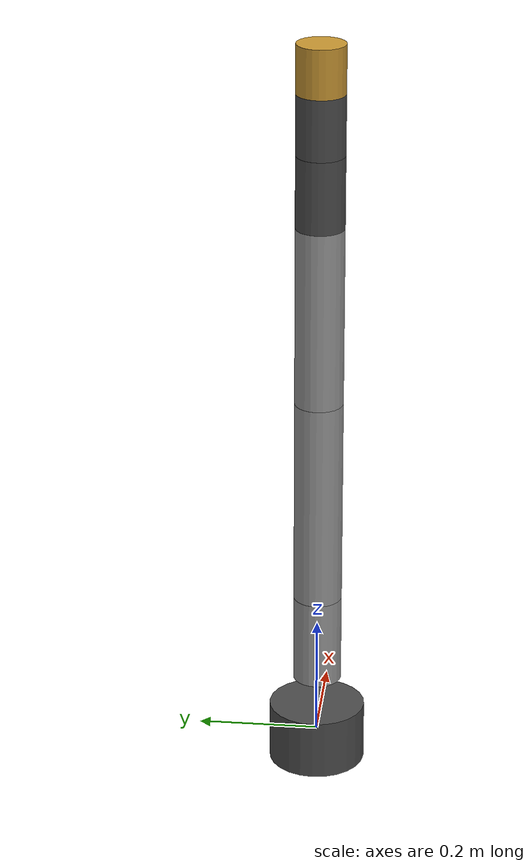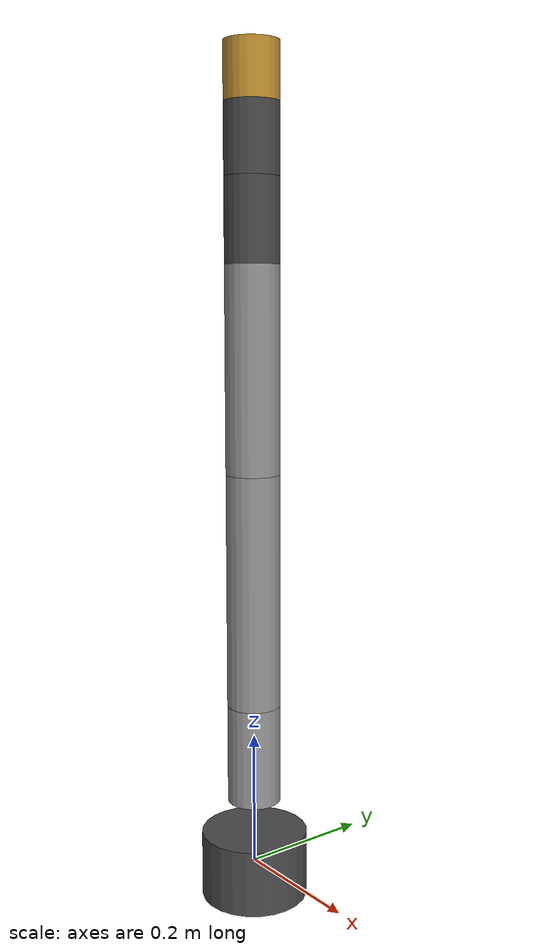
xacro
<?xml version="1.0"?>
<robot name="qoobot_arm6" xmlns:xacro="http://www.ros.org/wiki/xacro">

  <material name="arm_gray">
    <color rgba="0.6 0.6 0.6 1"/>
  </material>
  <material name="arm_dark">
    <color rgba="0.3 0.3 0.3 1"/>
  </material>
  <material name="flange_accent">
    <color rgba="0.8 0.6 0.2 1"/>
  </material>

  <!-- 关节参数 (对标 QJ 系列关节模组) -->
  <xacro:property name="link1_length" value="0.15"/>
  <xacro:property name="link2_length" value="0.35"/>
  <xacro:property name="link3_length" value="0.30"/>
  <xacro:property name="link4_length" value="0.12"/>
  <xacro:property name="link5_length" value="0.10"/>
  <xacro:property name="link6_length" value="0.08"/>

  <!-- ========================================================================
       MACRO: 旋转关节 + 连杆
       ======================================================================== -->
  <xacro:macro name="revolute_link" params="name parent axis xyz length mass effort vel lower upper color">
    <joint name="${name}" type="revolute">
      <origin xyz="${xyz}" rpy="0 0 0"/>
      <parent link="${parent}"/>
      <child link="${name}_link"/>
      <axis xyz="${axis}"/>
      <limit lower="${lower}" upper="${upper}" effort="${effort}" velocity="${vel}"/>
    </joint>
    <link name="${name}_link">
      <inertial>
        <origin xyz="0 0 ${length/2}" rpy="0 0 0"/>
        <mass value="${mass}"/>
        <inertia ixx="0.001" ixy="0" ixz="0" iyy="0.001" iyz="0" izz="0.0005"/>
      </inertial>
      <visual>
        <origin xyz="0 0 ${length/2}" rpy="0 0 0"/>
        <geometry>
          <cylinder radius="0.04" length="${length}"/>
        </geometry>
        <material name="${color}"/>
      </visual>
      <collision>
        <origin xyz="0 0 ${length/2}" rpy="0 0 0"/>
        <geometry>
          <cylinder radius="0.04" length="${length}"/>
        </geometry>
      </collision>
    </link>
  </xacro:macro>

  <!-- ========================================================================
       ASSEMBLY
       ======================================================================== -->

  <!-- Base -->
  <link name="base_link">
    <inertial>
      <mass value="2.0"/>
      <inertia ixx="0.01" ixy="0" ixz="0" iyy="0.01" iyz="0" izz="0.01"/>
    </inertial>
    <visual>
      <geometry><cylinder radius="0.08" length="0.1"/></geometry>
      <material name="arm_dark"/>
    </visual>
  </link>

  <!-- Joint 1: Base Rotation (Z) -->
  <xacro:revolute_link
    name="joint1" parent="base_link"
    axis="0 0 1" xyz="0 0 0.1" length="${link1_length}"
    mass="1.5" effort="80" vel="3.14"
    lower="-2.967" upper="2.967" color="arm_gray"/>

  <!-- Joint 2: Shoulder Pitch (Y) -->
  <xacro:revolute_link
    name="joint2" parent="joint1_link"
    axis="0 1 0" xyz="0 0 ${link1_length}" length="${link2_length}"
    mass="2.0" effort="80" vel="3.14"
    lower="-1.833" upper="1.833" color="arm_gray"/>

  <!-- Joint 3: Elbow Pitch (Y) -->
  <xacro:revolute_link
    name="joint3" parent="joint2_link"
    axis="0 1 0" xyz="0 0 ${link2_length}" length="${link3_length}"
    mass="1.5" effort="48" vel="3.14"
    lower="-2.967" upper="2.967" color="arm_gray"/>

  <!-- Joint 4: Wrist Roll (X) -->
  <xacro:revolute_link
    name="joint4" parent="joint3_link"
    axis="1 0 0" xyz="0 0 ${link3_length}" length="${link4_length}"
    mass="0.8" effort="28" vel="6.28"
    lower="-2.967" upper="2.967" color="arm_dark"/>

  <!-- Joint 5: Wrist Pitch (Y) -->
  <xacro:revolute_link
    name="joint5" parent="joint4_link"
    axis="0 1 0" xyz="0 0 ${link4_length}" length="${link5_length}"
    mass="0.5" effort="12" vel="6.28"
    lower="-2.967" upper="2.967" color="arm_dark"/>

  <!-- Joint 6: Wrist Rotation (Z) -->
  <xacro:revolute_link
    name="joint6" parent="joint5_link"
    axis="0 0 1" xyz="0 0 ${link5_length}" length="${link6_length}"
    mass="0.3" effort="12" vel="6.28"
    lower="-1.047" upper="1.047" color="flange_accent"/>

  <!-- Tool Flange (ISO 9409-1 Φ60) -->
  <link name="tool_flange">
    <inertial>
      <mass value="0.1"/>
      <inertia ixx="0.0001" ixy="0" ixz="0" iyy="0.0001" iyz="0" izz="0.0001"/>
    </inertial>
  </link>
  <joint name="flange_fixed" type="fixed">
    <origin xyz="0 0 ${link6_length}" rpy="0 0 0"/>
    <parent link="joint6_link"/>
    <child link="tool_flange"/>
  </joint>

</robot>
